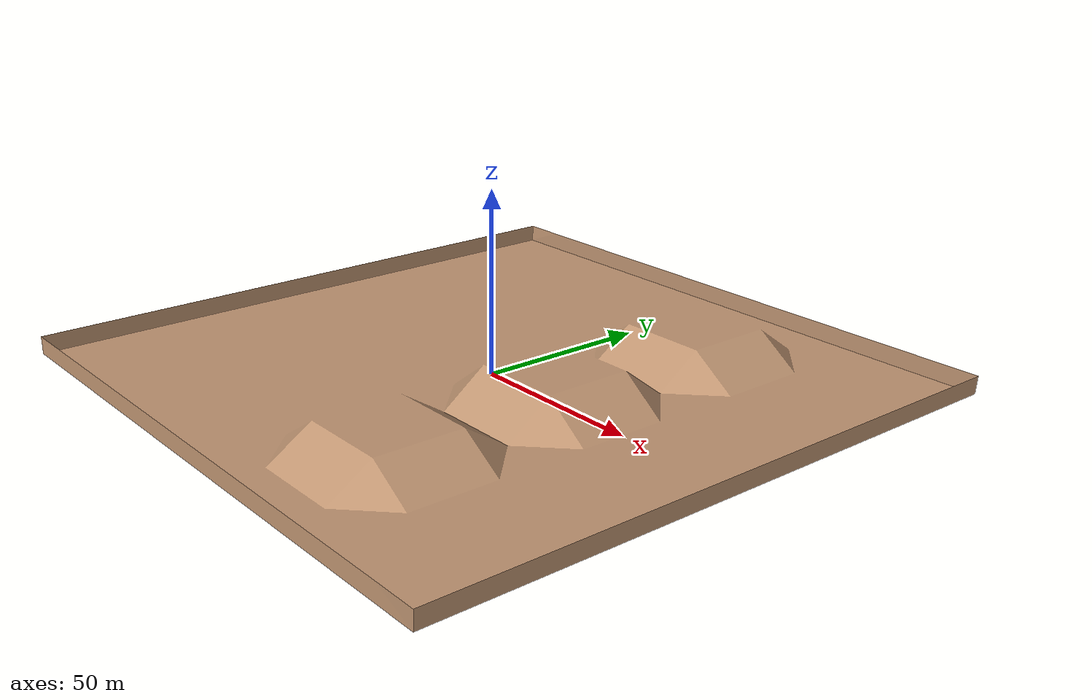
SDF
<?xml version="1.0"?>
<sdf version="1.9">
  <world name="PanterWorld">

    <physics type="ode">
      <gravity>0 0 -9.81</gravity>
      <max_step_size>0.01</max_step_size>
      <real_time_update_rate>1000.0</real_time_update_rate>
    </physics>

    <plugin
      filename="libignition-gazebo-physics-system.so"
      name="ignition::gazebo::systems::Physics">
    </plugin>
    <plugin
      filename="libignition-gazebo-user-commands-system.so"
      name="ignition::gazebo::systems::UserCommands">
    </plugin>

    <plugin
      filename="libignition-gazebo-scene-broadcaster-system.so"
      name="ignition::gazebo::systems::SceneBroadcaster">
    </plugin>

    <plugin
        filename="ignition-gazebo-contact-system"
        name="ignition::gazebo::systems::Contact">
    </plugin>
    <plugin
        filename="ignition-gazebo-forcetorque-system"
        name="ignition::gazebo::systems::ForceTorque">
    </plugin>

    <light type="directional" name="sun">
      <cast_shadows>true</cast_shadows>
      <pose>0 0 10 0 0 0</pose>
      <diffuse>0.8 0.8 0.8 1</diffuse>
      <specular>0.2 0.2 0.2 1</specular>
      <attenuation>
        <range>1000</range>
        <constant>0.9</constant>
        <linear>0.01</linear>
        <quadratic>0.001</quadratic>
      </attenuation>
      <direction>-0.5 0.1 -0.9</direction>
    </light>

    <include>
      <uri>model://Tierra</uri>
      <pose>0 0 0 0 0 0</pose>
    </include>

  </world>
</sdf>

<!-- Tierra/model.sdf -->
<sdf version="1.9">
  <model name="Tierra">
    <static>true</static>
    <link name="link">
      <visual name="visual">
        <pose>0 0 0.3 0 0 1.5708</pose>
        <geometry>
          <mesh>
            <scale>1 1 1</scale>
            <!-- ESCENARIO 1 -->
            <!-- ESCENARIO 2 -->
            <!-- ESCENARIO 3 -->
            <uri>model://Tierra/meshes/escenario3.dae</uri>
          </mesh>
        </geometry>
        <material>
          <ambient>0.765 0.594 0.453,1.0</ambient>
          <diffuse>0.765 0.594 0.453 1.0</diffuse>
        </material>
      </visual>
      <collision name="collision">
        <pose>0 0 0.3 0 0 1.5708</pose>
        <geometry>
          <mesh>
            <scale>1 1 1</scale>
            <!-- ESCENARIO 1 -->
            <!-- ESCENARIO 2 -->
            <!-- ESCENARIO 3 -->
            <uri>model://Tierra/meshes/escenario3.dae</uri>
          </mesh>
        </geometry>
        <surface>
          <friction>
            <ode>
              <mu>0.68</mu>
              <mu2>0.65</mu2>
            </ode>
          </friction>
        </surface>
      </collision>
    </link>
  </model>
</sdf>
